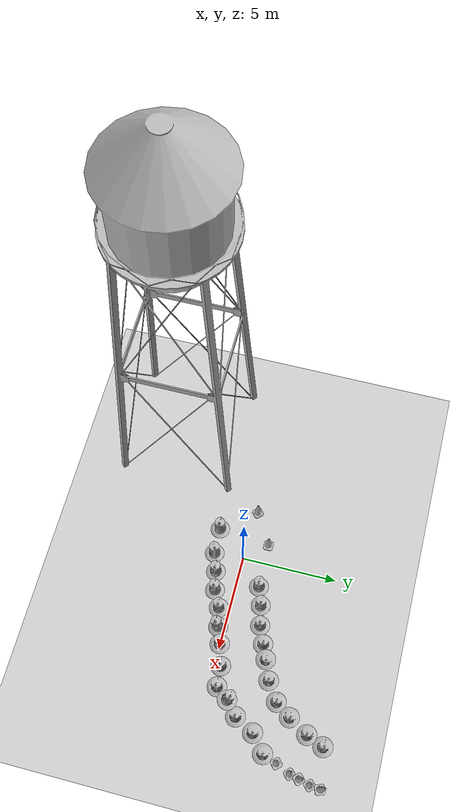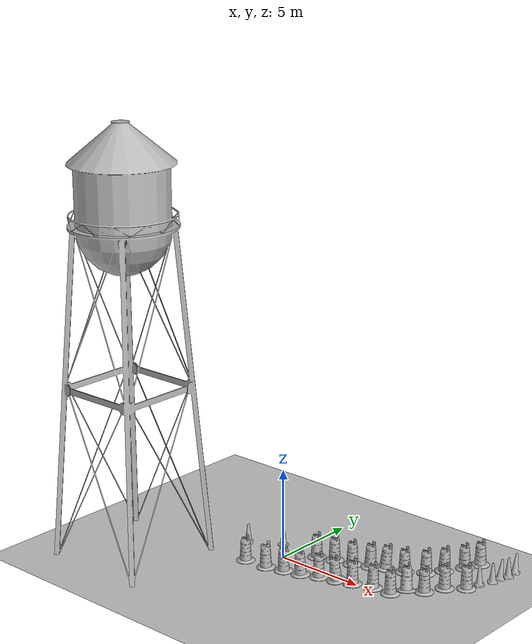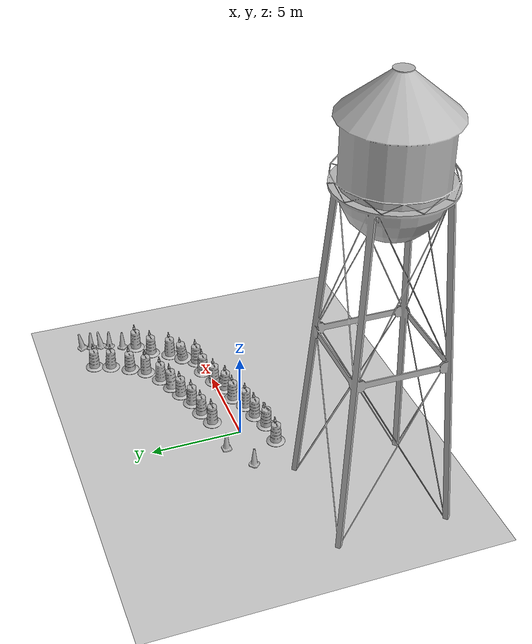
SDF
<sdf version="1.7">
 <world name="default">
  <light name="sun" type="directional">
   <pose>0 0 10 0 -0 0</pose>
   <diffuse>0.8 0.8 0.8 1</diffuse>
   <specular>0.2 0.2 0.2 1</specular>
   <attenuation>
    <range>1000</range>
    <constant>0.9</constant>
    <linear>0.01</linear>
    <quadratic>0.001</quadratic>
   </attenuation>
   <direction>-0.5 0.1 -0.9</direction>
   <spot><inner_angle>0</inner_angle><outer_angle>0</outer_angle><falloff>0</falloff></spot>
  </light>
  <model name="ground_plane">
   <static>1</static>
   <link name="link">
    <collision name="collision">
     <geometry><plane><normal>0 0 1</normal><size>100 100</size></plane></geometry>
     <surface>
      <contact><collide_bitmask>65535</collide_bitmask></contact>
      <friction><ode><mu>100</mu><mu2>50</mu2></ode></friction>
     </surface>
    </collision>
    <visual name="visual">
     <cast_shadows>0</cast_shadows>
     <geometry><plane><normal>0 0 1</normal><size>100 100</size></plane></geometry>
     <material>
      <script><uri>file://media/materials/scripts/gazebo.material</uri><name>Gazebo/Grey</name></script>
     </material>
    </visual>
   </link>
  </model>
  <gravity>0 0 -9.8</gravity>
  <magnetic_field>6e-06 2.3e-05 -4.2e-05</magnetic_field>
  <atmosphere type="adiabatic"/>
  <physics type="ode">
   <max_step_size>0.001</max_step_size>
   <real_time_factor>1</real_time_factor>
   <real_time_update_rate>1000</real_time_update_rate>
  </physics>
  <scene><ambient>0.4 0.4 0.4 1</ambient><background>0.7 0.7 0.7 1</background><shadows>1</shadows></scene>
  <audio><device>default</device></audio>
  <spherical_coordinates>
   <surface_model>EARTH_WGS84</surface_model>
   <latitude_deg>0</latitude_deg>
   <longitude_deg>0</longitude_deg>
   <elevation>0</elevation>
   <heading_deg>0</heading_deg>
  </spherical_coordinates>
  <model name="Construction Cone">
   <link name="link">
    <collision name="collision">
     <geometry>
      <mesh><scale>10 10 10</scale><uri>model://construction_cone/meshes/construction_cone.dae</uri></mesh>
     </geometry>
    </collision>
    <visual name="visual">
     <geometry>
      <mesh><scale>10 10 10</scale><uri>model://construction_cone/meshes/construction_cone.dae</uri></mesh>
     </geometry>
    </visual>
    <inertial>
     <inertia><ixx>1</ixx><ixy>0</ixy><ixz>0</ixz><iyy>1</iyy><iyz>0</iyz><izz>1</izz></inertia>
     <mass>1</mass>
    </inertial>
   </link>
   <pose>-1.00525 1.13466 -0 0 -0 0</pose>
  </model>
  <model name="Construction Cone_0">
   <link name="link">
    <collision name="collision">
     <geometry>
      <mesh><scale>10 10 10</scale><uri>model://construction_cone/meshes/construction_cone.dae</uri></mesh>
     </geometry>
    </collision>
    <visual name="visual">
     <geometry>
      <mesh><scale>10 10 10</scale><uri>model://construction_cone/meshes/construction_cone.dae</uri></mesh>
     </geometry>
    </visual>
    <inertial>
     <inertia><ixx>1</ixx><ixy>0</ixy><ixz>0</ixz><iyy>1</iyy><iyz>0</iyz><izz>1</izz></inertia>
     <mass>1</mass>
    </inertial>
   </link>
   <pose>-2.66842 0.153423 -1e-06 1e-06 -2e-06 -0.819479</pose>
  </model>
  <model name="Construction Barrel">
   <link name="link">
    <inertial>
     <pose>0 0 0.4 0 -0 0</pose>
     <mass>500</mass>
     <inertia><ixx>51.2096</ixx><iyy>51.2096</iyy><izz>25</izz><ixy>0</ixy><ixz>0</ixz><iyz>0</iyz></inertia>
    </inertial>
    <collision name="collision">
     <geometry><mesh><uri>model://construction_barrel/meshes/construction_barrel.dae</uri></mesh></geometry>
    </collision>
    <visual name="visual">
     <geometry><mesh><uri>model://construction_barrel/meshes/construction_barrel.dae</uri></mesh></geometry>
    </visual>
   </link>
   <pose>0.111032 -1.52425 0.01108 -0.002856 -0.021729 0.439563</pose>
  </model>
  <model name="Construction Barrel_0">
   <link name="link">
    <inertial>
     <pose>0 0 0.4 0 -0 0</pose>
     <mass>500</mass>
     <inertia><ixx>51.2096</ixx><iyy>51.2096</iyy><izz>25</izz><ixy>0</ixy><ixz>0</ixz><iyz>0</iyz></inertia>
    </inertial>
    <collision name="collision">
     <geometry><mesh><uri>model://construction_barrel/meshes/construction_barrel.dae</uri></mesh></geometry>
    </collision>
    <visual name="visual">
     <geometry><mesh><uri>model://construction_barrel/meshes/construction_barrel.dae</uri></mesh></geometry>
    </visual>
   </link>
   <pose>1.31429 1.18995 0 0 -0 0.001316</pose>
  </model>
  <model name="water_tower">
   <static>1</static>
   <link name="link">
    <collision name="collision">
     <geometry><mesh><uri>model://water_tower/meshes/water_tower.dae</uri></mesh></geometry>
    </collision>
    <visual name="visual">
     <geometry><mesh><uri>model://water_tower/meshes/water_tower.dae</uri></mesh></geometry>
    </visual>
   </link>
   <pose>-6.56833 -4.70062 0 0 -0 0</pose>
  </model>
  <model name="Construction Barrel_0_clone">
   <link name="link">
    <inertial>
     <pose>0 0 0.4 0 -0 0</pose>
     <mass>500</mass>
     <inertia><ixx>51.2096</ixx><iyy>51.2096</iyy><izz>25</izz><ixy>0</ixy><ixz>0</ixz><iyz>0</iyz></inertia>
    </inertial>
    <collision name="collision">
     <geometry><mesh><uri>model://construction_barrel/meshes/construction_barrel.dae</uri></mesh></geometry>
    </collision>
    <visual name="visual">
     <geometry><mesh><uri>model://construction_barrel/meshes/construction_barrel.dae</uri></mesh></geometry>
    </visual>
   </link>
   <pose>2.27088 1.523 -0 0 -0 -0.000314</pose>
  </model>
  <model name="Construction Barrel_0_clone_0">
   <link name="link">
    <inertial>
     <pose>0 0 0.4 0 -0 0</pose>
     <mass>500</mass>
     <inertia><ixx>51.2096</ixx><iyy>51.2096</iyy><izz>25</izz><ixy>0</ixy><ixz>0</ixz><iyz>0</iyz></inertia>
    </inertial>
    <collision name="collision">
     <geometry><mesh><uri>model://construction_barrel/meshes/construction_barrel.dae</uri></mesh></geometry>
    </collision>
    <visual name="visual">
     <geometry><mesh><uri>model://construction_barrel/meshes/construction_barrel.dae</uri></mesh></geometry>
    </visual>
   </link>
   <pose>3.3014 1.74686 -0.000638 -0.000463 0.000774 -0.045621</pose>
  </model>
  <model name="Construction Barrel_0_clone_1">
   <link name="link">
    <inertial>
     <pose>0 0 0.4 0 -0 0</pose>
     <mass>500</mass>
     <inertia><ixx>51.2096</ixx><iyy>51.2096</iyy><izz>25</izz><ixy>0</ixy><ixz>0</ixz><iyz>0</iyz></inertia>
    </inertial>
    <collision name="collision">
     <geometry><mesh><uri>model://construction_barrel/meshes/construction_barrel.dae</uri></mesh></geometry>
    </collision>
    <visual name="visual">
     <geometry><mesh><uri>model://construction_barrel/meshes/construction_barrel.dae</uri></mesh></geometry>
    </visual>
   </link>
   <pose>4.2051 2.1258 0.01489 -0.011277 0.027214 0.004216</pose>
  </model>
  <model name="Construction Barrel_0_clone_2">
   <link name="link">
    <inertial>
     <pose>0 0 0.4 0 -0 0</pose>
     <mass>500</mass>
     <inertia><ixx>51.2096</ixx><iyy>51.2096</iyy><izz>25</izz><ixy>0</ixy><ixz>0</ixz><iyz>0</iyz></inertia>
    </inertial>
    <collision name="collision">
     <geometry><mesh><uri>model://construction_barrel/meshes/construction_barrel.dae</uri></mesh></geometry>
    </collision>
    <visual name="visual">
     <geometry><mesh><uri>model://construction_barrel/meshes/construction_barrel.dae</uri></mesh></geometry>
    </visual>
   </link>
   <pose>4.94042 2.44233 0.054761 -0.042275 0.099889 -0.020162</pose>
  </model>
  <model name="Construction Barrel_0_clone_3">
   <link name="link">
    <inertial>
     <pose>0 0 0.4 0 -0 0</pose>
     <mass>500</mass>
     <inertia><ixx>51.2096</ixx><iyy>51.2096</iyy><izz>25</izz><ixy>0</ixy><ixz>0</ixz><iyz>0</iyz></inertia>
    </inertial>
    <collision name="collision">
     <geometry><mesh><uri>model://construction_barrel/meshes/construction_barrel.dae</uri></mesh></geometry>
    </collision>
    <visual name="visual">
     <geometry><mesh><uri>model://construction_barrel/meshes/construction_barrel.dae</uri></mesh></geometry>
    </visual>
   </link>
   <pose>5.92761 2.83393 -1e-06 3e-06 -0 -4e-05</pose>
  </model>
  <model name="Construction Barrel_0_clone_4">
   <link name="link">
    <inertial>
     <pose>0 0 0.4 0 -0 0</pose>
     <mass>500</mass>
     <inertia><ixx>51.2096</ixx><iyy>51.2096</iyy><izz>25</izz><ixy>0</ixy><ixz>0</ixz><iyz>0</iyz></inertia>
    </inertial>
    <collision name="collision">
     <geometry><mesh><uri>model://construction_barrel/meshes/construction_barrel.dae</uri></mesh></geometry>
    </collision>
    <visual name="visual">
     <geometry><mesh><uri>model://construction_barrel/meshes/construction_barrel.dae</uri></mesh></geometry>
    </visual>
   </link>
   <pose>6.86284 3.45837 -1.4e-05 -9e-06 1.5e-05 0.008835</pose>
  </model>
  <model name="Construction Barrel_0_clone_5">
   <link name="link">
    <inertial>
     <pose>0 0 0.4 0 -0 0</pose>
     <mass>500</mass>
     <inertia><ixx>51.2096</ixx><iyy>51.2096</iyy><izz>25</izz><ixy>0</ixy><ixz>0</ixz><iyz>0</iyz></inertia>
    </inertial>
    <collision name="collision">
     <geometry><mesh><uri>model://construction_barrel/meshes/construction_barrel.dae</uri></mesh></geometry>
    </collision>
    <visual name="visual">
     <geometry><mesh><uri>model://construction_barrel/meshes/construction_barrel.dae</uri></mesh></geometry>
    </visual>
   </link>
   <pose>1.0683 -1.20766 -0.000119 7.4e-05 -0.000272 0.011613</pose>
  </model>
  <model name="Construction Barrel_0_clone_6">
   <link name="link">
    <inertial>
     <pose>0 0 0.4 0 -0 0</pose>
     <mass>500</mass>
     <inertia><ixx>51.2096</ixx><iyy>51.2096</iyy><izz>25</izz><ixy>0</ixy><ixz>0</ixz><iyz>0</iyz></inertia>
    </inertial>
    <collision name="collision">
     <geometry><mesh><uri>model://construction_barrel/meshes/construction_barrel.dae</uri></mesh></geometry>
    </collision>
    <visual name="visual">
     <geometry><mesh><uri>model://construction_barrel/meshes/construction_barrel.dae</uri></mesh></geometry>
    </visual>
   </link>
   <pose>2.05916 -0.99182 0.019737 0.014985 -0.036142 0.010721</pose>
  </model>
  <model name="Construction Barrel_0_clone_7">
   <link name="link">
    <inertial>
     <pose>0 0 0.4 0 -0 0</pose>
     <mass>500</mass>
     <inertia><ixx>51.2096</ixx><iyy>51.2096</iyy><izz>25</izz><ixy>0</ixy><ixz>0</ixz><iyz>0</iyz></inertia>
    </inertial>
    <collision name="collision">
     <geometry><mesh><uri>model://construction_barrel/meshes/construction_barrel.dae</uri></mesh></geometry>
    </collision>
    <visual name="visual">
     <geometry><mesh><uri>model://construction_barrel/meshes/construction_barrel.dae</uri></mesh></geometry>
    </visual>
   </link>
   <pose>2.92127 -0.558866 -1e-06 -1e-06 3e-06 0.001119</pose>
  </model>
  <model name="Construction Barrel_0_clone_8">
   <link name="link">
    <inertial>
     <pose>0 0 0.4 0 -0 0</pose>
     <mass>500</mass>
     <inertia><ixx>51.2096</ixx><iyy>51.2096</iyy><izz>25</izz><ixy>0</ixy><ixz>0</ixz><iyz>0</iyz></inertia>
    </inertial>
    <collision name="collision">
     <geometry><mesh><uri>model://construction_barrel/meshes/construction_barrel.dae</uri></mesh></geometry>
    </collision>
    <visual name="visual">
     <geometry><mesh><uri>model://construction_barrel/meshes/construction_barrel.dae</uri></mesh></geometry>
    </visual>
   </link>
   <pose>3.90621 -0.32526 0.053939 0.098378 -0.041484 0.0313</pose>
  </model>
  <model name="Construction Barrel_0_clone_9">
   <link name="link">
    <inertial>
     <pose>0 0 0.4 0 -0 0</pose>
     <mass>500</mass>
     <inertia><ixx>51.2096</ixx><iyy>51.2096</iyy><izz>25</izz><ixy>0</ixy><ixz>0</ixz><iyz>0</iyz></inertia>
    </inertial>
    <collision name="collision">
     <geometry><mesh><uri>model://construction_barrel/meshes/construction_barrel.dae</uri></mesh></geometry>
    </collision>
    <visual name="visual">
     <geometry><mesh><uri>model://construction_barrel/meshes/construction_barrel.dae</uri></mesh></geometry>
    </visual>
   </link>
   <pose>4.73743 -0.029693 0 0 -0 0.003306</pose>
  </model>
  <model name="Construction Barrel_0_clone_10">
   <link name="link">
    <inertial>
     <pose>0 0 0.4 0 -0 0</pose>
     <mass>500</mass>
     <inertia><ixx>51.2096</ixx><iyy>51.2096</iyy><izz>25</izz><ixy>0</ixy><ixz>0</ixz><iyz>0</iyz></inertia>
    </inertial>
    <collision name="collision">
     <geometry><mesh><uri>model://construction_barrel/meshes/construction_barrel.dae</uri></mesh></geometry>
    </collision>
    <visual name="visual">
     <geometry><mesh><uri>model://construction_barrel/meshes/construction_barrel.dae</uri></mesh></geometry>
    </visual>
   </link>
   <pose>5.8202 0.314582 -1e-06 5e-06 -3e-06 0.001324</pose>
  </model>
  <model name="Construction Barrel_0_clone_11">
   <link name="link">
    <inertial>
     <pose>0 0 0.4 0 -0 0</pose>
     <mass>500</mass>
     <inertia><ixx>51.2096</ixx><iyy>51.2096</iyy><izz>25</izz><ixy>0</ixy><ixz>0</ixz><iyz>0</iyz></inertia>
    </inertial>
    <collision name="collision">
     <geometry><mesh><uri>model://construction_barrel/meshes/construction_barrel.dae</uri></mesh></geometry>
    </collision>
    <visual name="visual">
     <geometry><mesh><uri>model://construction_barrel/meshes/construction_barrel.dae</uri></mesh></geometry>
    </visual>
   </link>
   <pose>6.86618 0.392034 -2.4e-05 -1.2e-05 1e-05 -0.016419</pose>
  </model>
  <model name="Construction Barrel_0_clone_12">
   <link name="link">
    <inertial>
     <pose>0 0 0.4 0 -0 0</pose>
     <mass>500</mass>
     <inertia><ixx>51.2096</ixx><iyy>51.2096</iyy><izz>25</izz><ixy>0</ixy><ixz>0</ixz><iyz>0</iyz></inertia>
    </inertial>
    <collision name="collision">
     <geometry><mesh><uri>model://construction_barrel/meshes/construction_barrel.dae</uri></mesh></geometry>
    </collision>
    <visual name="visual">
     <geometry><mesh><uri>model://construction_barrel/meshes/construction_barrel.dae</uri></mesh></geometry>
    </visual>
   </link>
   <pose>7.3911 1.04581 0.090622 -0.128824 -0.124166 -0.149701</pose>
  </model>
  <model name="Construction Barrel_0_clone_13">
   <link name="link">
    <inertial>
     <pose>0 0 0.4 0 -0 0</pose>
     <mass>500</mass>
     <inertia><ixx>51.2096</ixx><iyy>51.2096</iyy><izz>25</izz><ixy>0</ixy><ixz>0</ixz><iyz>0</iyz></inertia>
    </inertial>
    <collision name="collision">
     <geometry><mesh><uri>model://construction_barrel/meshes/construction_barrel.dae</uri></mesh></geometry>
    </collision>
    <visual name="visual">
     <geometry><mesh><uri>model://construction_barrel/meshes/construction_barrel.dae</uri></mesh></geometry>
    </visual>
   </link>
   <pose>8.06385 1.6574 -1e-05 0 -0 -0.046066</pose>
  </model>
  <model name="Construction Barrel_0_clone_14">
   <link name="link">
    <inertial>
     <pose>0 0 0.4 0 -0 0</pose>
     <mass>500</mass>
     <inertia><ixx>51.2096</ixx><iyy>51.2096</iyy><izz>25</izz><ixy>0</ixy><ixz>0</ixz><iyz>0</iyz></inertia>
    </inertial>
    <collision name="collision">
     <geometry><mesh><uri>model://construction_barrel/meshes/construction_barrel.dae</uri></mesh></geometry>
    </collision>
    <visual name="visual">
     <geometry><mesh><uri>model://construction_barrel/meshes/construction_barrel.dae</uri></mesh></geometry>
    </visual>
   </link>
   <pose>8.61161 2.67175 -0 0 -0 0.001322</pose>
  </model>
  <model name="Construction Barrel_0_clone_15">
   <link name="link">
    <inertial>
     <pose>0 0 0.4 0 -0 0</pose>
     <mass>500</mass>
     <inertia><ixx>51.2096</ixx><iyy>51.2096</iyy><izz>25</izz><ixy>0</ixy><ixz>0</ixz><iyz>0</iyz></inertia>
    </inertial>
    <collision name="collision">
     <geometry><mesh><uri>model://construction_barrel/meshes/construction_barrel.dae</uri></mesh></geometry>
    </collision>
    <visual name="visual">
     <geometry><mesh><uri>model://construction_barrel/meshes/construction_barrel.dae</uri></mesh></geometry>
    </visual>
   </link>
   <pose>9.46058 3.38384 -1e-06 1e-06 -9e-06 0.001383</pose>
  </model>
  <model name="Construction Barrel_0_clone_16">
   <link name="link">
    <inertial>
     <pose>0 0 0.4 0 -0 0</pose>
     <mass>500</mass>
     <inertia><ixx>51.2096</ixx><iyy>51.2096</iyy><izz>25</izz><ixy>0</ixy><ixz>0</ixz><iyz>0</iyz></inertia>
    </inertial>
    <collision name="collision">
     <geometry><mesh><uri>model://construction_barrel/meshes/construction_barrel.dae</uri></mesh></geometry>
    </collision>
    <visual name="visual">
     <geometry><mesh><uri>model://construction_barrel/meshes/construction_barrel.dae</uri></mesh></geometry>
    </visual>
   </link>
   <pose>7.43598 4.25788 0.014762 -0.023223 0.017734 -0.041143</pose>
  </model>
  <model name="Construction Barrel_0_clone_17">
   <link name="link">
    <inertial>
     <pose>0 0 0.4 0 -0 0</pose>
     <mass>500</mass>
     <inertia><ixx>51.2096</ixx><iyy>51.2096</iyy><izz>25</izz><ixy>0</ixy><ixz>0</ixz><iyz>0</iyz></inertia>
    </inertial>
    <collision name="collision">
     <geometry><mesh><uri>model://construction_barrel/meshes/construction_barrel.dae</uri></mesh></geometry>
    </collision>
    <visual name="visual">
     <geometry><mesh><uri>model://construction_barrel/meshes/construction_barrel.dae</uri></mesh></geometry>
    </visual>
   </link>
   <pose>8.04376 5.27855 0.018337 0.033526 -0.013883 -0.059807</pose>
  </model>
  <model name="Construction Barrel_0_clone_18">
   <link name="link">
    <inertial>
     <pose>0 0 0.4 0 -0 0</pose>
     <mass>500</mass>
     <inertia><ixx>51.2096</ixx><iyy>51.2096</iyy><izz>25</izz><ixy>0</ixy><ixz>0</ixz><iyz>0</iyz></inertia>
    </inertial>
    <collision name="collision">
     <geometry><mesh><uri>model://construction_barrel/meshes/construction_barrel.dae</uri></mesh></geometry>
    </collision>
    <visual name="visual">
     <geometry><mesh><uri>model://construction_barrel/meshes/construction_barrel.dae</uri></mesh></geometry>
    </visual>
   </link>
   <pose>8.40468 6.17547 -0.001087 0.002245 -0.001168 0.010521</pose>
  </model>
  <model name="Construction Barrel_0_clone_19">
   <link name="link">
    <inertial>
     <pose>0 0 0.4 0 -0 0</pose>
     <mass>500</mass>
     <inertia><ixx>51.2096</ixx><iyy>51.2096</iyy><izz>25</izz><ixy>0</ixy><ixz>0</ixz><iyz>0</iyz></inertia>
    </inertial>
    <collision name="collision">
     <geometry><mesh><uri>model://construction_barrel/meshes/construction_barrel.dae</uri></mesh></geometry>
    </collision>
    <visual name="visual">
     <geometry><mesh><uri>model://construction_barrel/meshes/construction_barrel.dae</uri></mesh></geometry>
    </visual>
   </link>
   <pose>-1.27783 -1.58711 -2e-06 -5e-06 -4e-06 0.001319</pose>
  </model>
  <model name="Construction Cone_0_clone">
   <link name="link">
    <collision name="collision">
     <geometry>
      <mesh><scale>10 10 10</scale><uri>model://construction_cone/meshes/construction_cone.dae</uri></mesh>
     </geometry>
    </collision>
    <visual name="visual">
     <geometry>
      <mesh><scale>10 10 10</scale><uri>model://construction_cone/meshes/construction_cone.dae</uri></mesh>
     </geometry>
    </visual>
    <inertial>
     <inertia><ixx>1</ixx><ixy>0</ixy><ixz>0</ixz><iyy>1</iyy><iyz>0</iyz><izz>1</izz></inertia>
     <mass>1</mass>
    </inertial>
   </link>
   <pose>9.73041 4.14519 -0 0 0 -0.818431</pose>
  </model>
  <model name="Construction Cone_0_clone_0">
   <link name="link">
    <collision name="collision">
     <geometry>
      <mesh><scale>10 10 10</scale><uri>model://construction_cone/meshes/construction_cone.dae</uri></mesh>
     </geometry>
    </collision>
    <visual name="visual">
     <geometry>
      <mesh><scale>10 10 10</scale><uri>model://construction_cone/meshes/construction_cone.dae</uri></mesh>
     </geometry>
    </visual>
    <inertial>
     <inertia><ixx>1</ixx><ixy>0</ixy><ixz>0</ixz><iyy>1</iyy><iyz>0</iyz><izz>1</izz></inertia>
     <mass>1</mass>
    </inertial>
   </link>
   <pose>10.0538 4.87354 -1.9e-05 -2e-06 -1e-06 -0.819906</pose>
  </model>
  <model name="Construction Cone_0_clone_1">
   <link name="link">
    <collision name="collision">
     <geometry>
      <mesh><scale>10 10 10</scale><uri>model://construction_cone/meshes/construction_cone.dae</uri></mesh>
     </geometry>
    </collision>
    <visual name="visual">
     <geometry>
      <mesh><scale>10 10 10</scale><uri>model://construction_cone/meshes/construction_cone.dae</uri></mesh>
     </geometry>
    </visual>
    <inertial>
     <inertia><ixx>1</ixx><ixy>0</ixy><ixz>0</ixz><iyy>1</iyy><iyz>0</iyz><izz>1</izz></inertia>
     <mass>1</mass>
    </inertial>
   </link>
   <pose>10.1709 5.35093 0.045625 -0.132647 -0.073242 -0.810695</pose>
  </model>
  <model name="Construction Cone_0_clone_2">
   <link name="link">
    <collision name="collision">
     <geometry>
      <mesh><scale>10 10 10</scale><uri>model://construction_cone/meshes/construction_cone.dae</uri></mesh>
     </geometry>
    </collision>
    <visual name="visual">
     <geometry>
      <mesh><scale>10 10 10</scale><uri>model://construction_cone/meshes/construction_cone.dae</uri></mesh>
     </geometry>
    </visual>
    <inertial>
     <inertia><ixx>1</ixx><ixy>0</ixy><ixz>0</ixz><iyy>1</iyy><iyz>0</iyz><izz>1</izz></inertia>
     <mass>1</mass>
    </inertial>
   </link>
   <pose>10.3203 5.93659 -4.8e-05 -1e-06 -2e-06 -0.818423</pose>
  </model>
  <model name="Construction Cone_0_clone_4">
   <link name="link">
    <collision name="collision">
     <geometry>
      <mesh><scale>10 10 10</scale><uri>model://construction_cone/meshes/construction_cone.dae</uri></mesh>
     </geometry>
    </collision>
    <visual name="visual">
     <geometry>
      <mesh><scale>10 10 10</scale><uri>model://construction_cone/meshes/construction_cone.dae</uri></mesh>
     </geometry>
    </visual>
    <inertial>
     <inertia><ixx>1</ixx><ixy>0</ixy><ixz>0</ixz><iyy>1</iyy><iyz>0</iyz><izz>1</izz></inertia>
     <mass>1</mass>
    </inertial>
   </link>
   <pose>10.393 6.44342 0.044577 -0.035299 -0.154285 -1.18849</pose>
  </model>
 </world>
</sdf>
